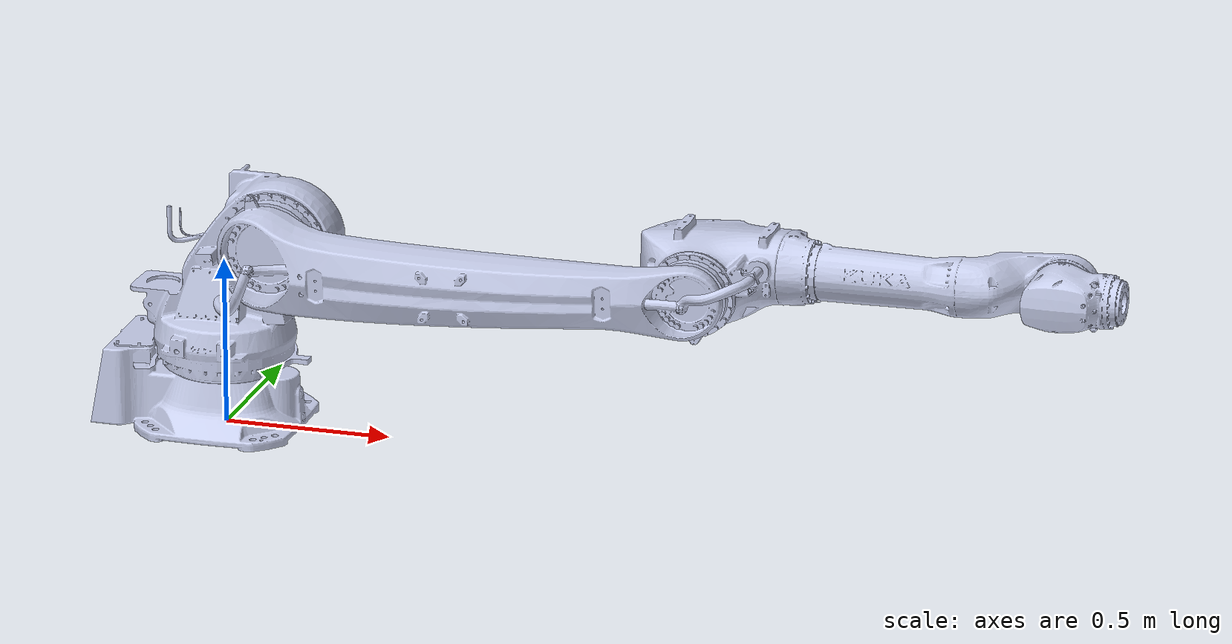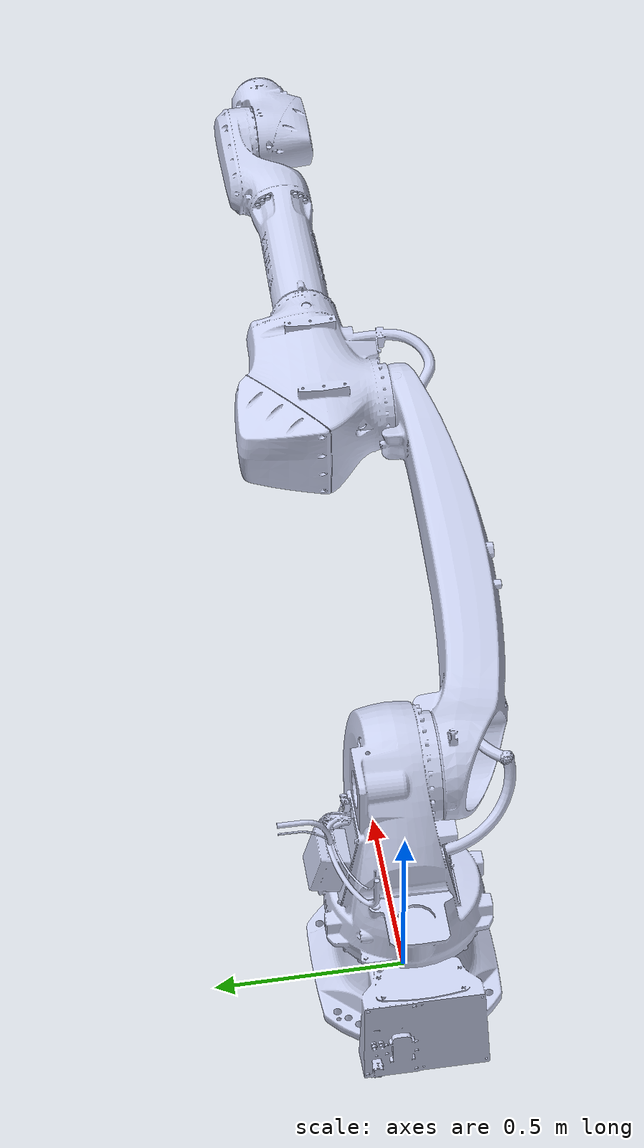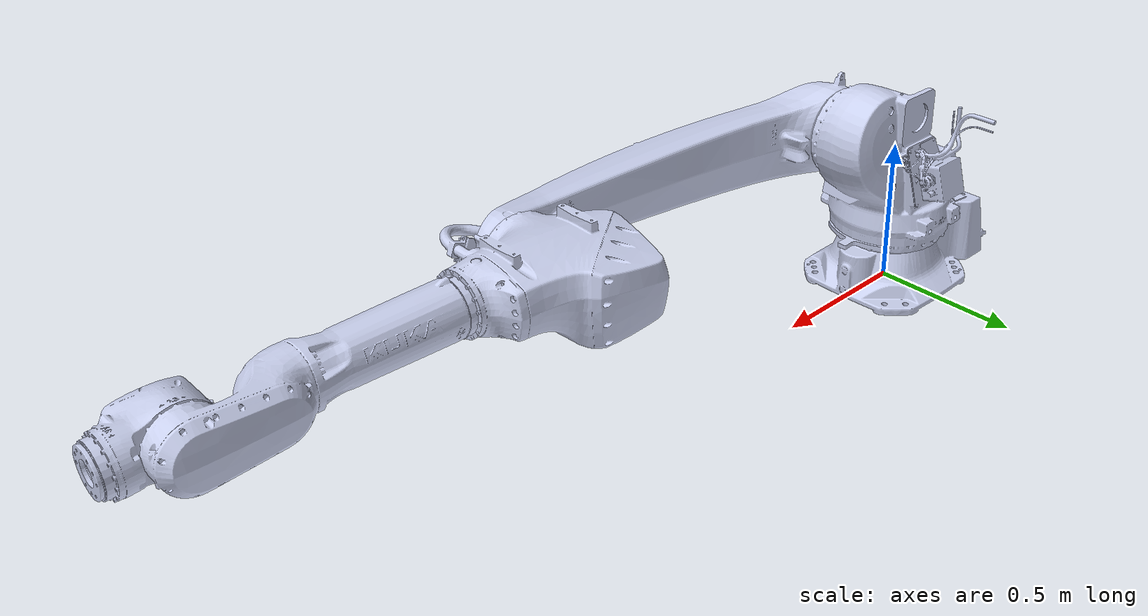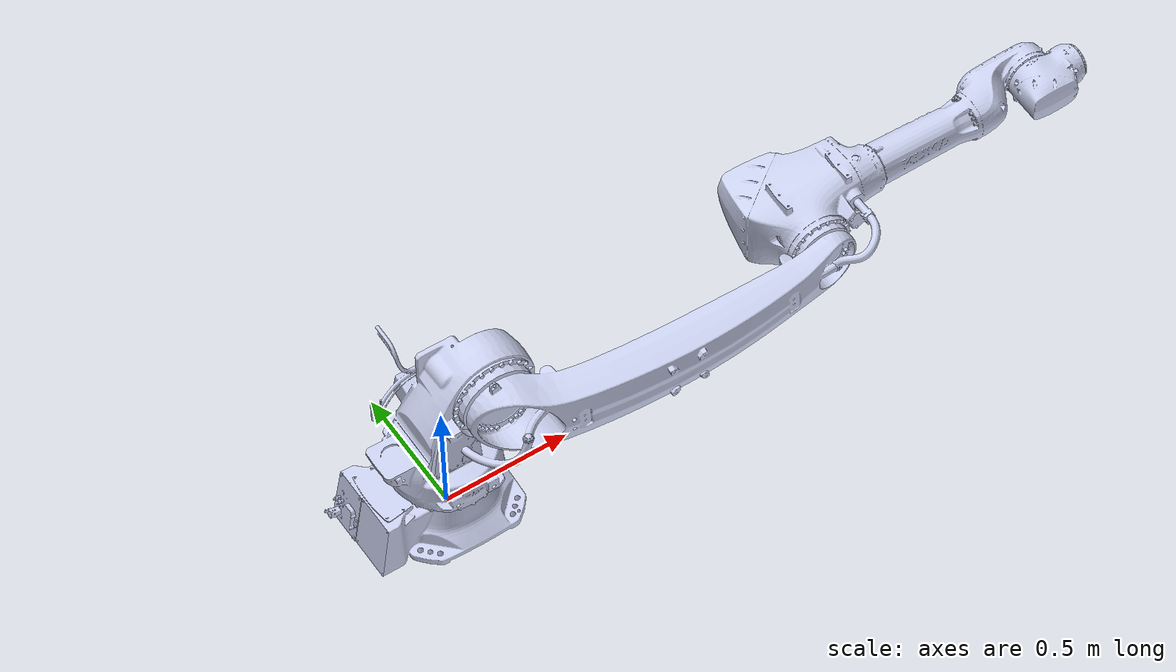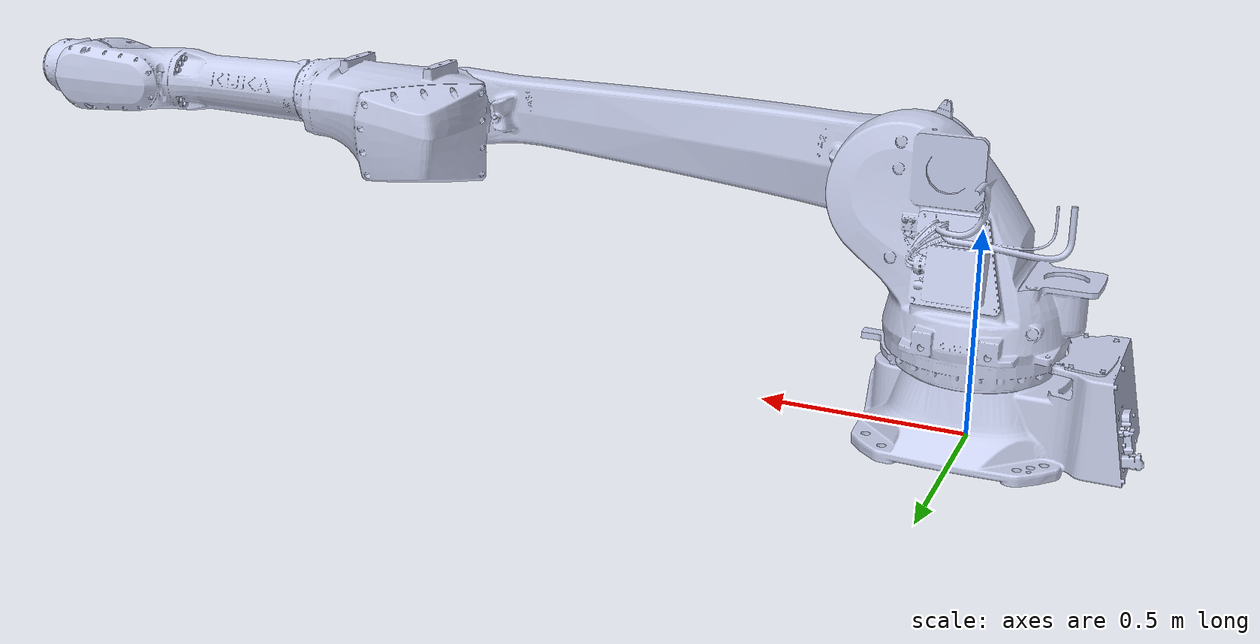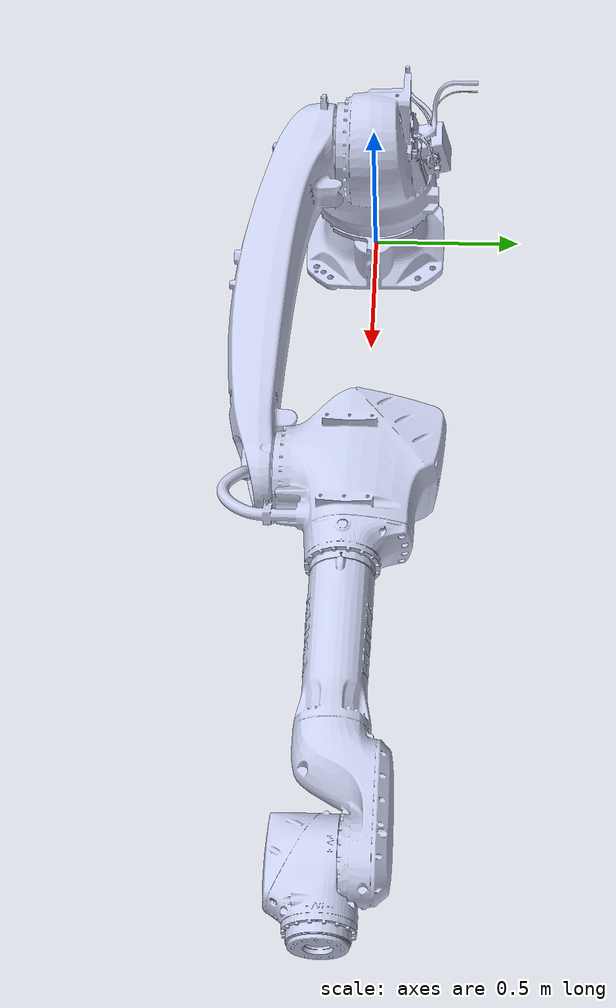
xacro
<?xml version="1.0"?>
<robot  name="kr_50_r2500" xmlns:xacro="http://www.ros.org/wiki/xacro">

  <xacro:property name="joint1_pos_upper_limit" value="2.90597" />
  <xacro:property name="joint1_pos_lower_limit" value="-2.90597" />
  <xacro:property name="joint2_pos_upper_limit" value="0.942478" />
  <xacro:property name="joint2_pos_lower_limit" value="-2.74889" />
  <xacro:property name="joint3_pos_upper_limit" value="2.67035" />
  <xacro:property name="joint3_pos_lower_limit" value="-1.88496" />
  <xacro:property name="joint4_pos_upper_limit" value="2.82743" />
  <xacro:property name="joint4_pos_lower_limit" value="-2.82743" />
  <xacro:property name="joint5_pos_upper_limit" value="1.9635" />
  <xacro:property name="joint5_pos_lower_limit" value="-1.9635" />
  <xacro:property name="joint6_pos_upper_limit" value="5.49779" />
  <xacro:property name="joint6_pos_lower_limit" value="-5.49779" />

  <xacro:property name="joint1_vel_limit" value="2.74889" />
  <xacro:property name="joint2_vel_limit" value="2.48186" />
  <xacro:property name="joint3_vel_limit" value="2.74889" />
  <xacro:property name="joint4_vel_limit" value="3.92699" />
  <xacro:property name="joint5_vel_limit" value="3.92699" />
  <xacro:property name="joint6_vel_limit" value="5.65487" />

  <!-- Effort limit = V elocity limit * 5 -->

  <xacro:property name="joint1_eff_limit" value="10000" />
  <xacro:property name="joint2_eff_limit" value="10000" />
  <xacro:property name="joint3_eff_limit" value="10000" />
  <xacro:property name="joint4_eff_limit" value="10000" />
  <xacro:property name="joint5_eff_limit" value="10000" />
  <xacro:property name="joint6_eff_limit" value="10000" />

  <link
    name="world" />
  <link
    name="base_link">
    <inertial>
      <origin
        xyz="-0.080585 0.00067592 0.086754"
        rpy="0 0 0" />
      <mass
        value="30.385" />
      <inertia
        ixx="0.38941"
        ixy="0.0047083"
        ixz="0.060696"
        iyy="0.87424"
        iyz="-0.00029206"
        izz="1.0819" />
    </inertial>
    <visual>
      <origin
        xyz="0 0 0"
        rpy="0 0 0" />
      <geometry>
        <mesh
          filename="package://kr_50_r2500_gazebo/meshes/base_link.STL" />
      </geometry>
      <material
        name="">
        <color
          rgba="0.79216 0.81961 0.93333 1" />
      </material>
    </visual>
    <collision>
      <origin
        xyz="0 0 0"
        rpy="0 0 0" />
      <geometry>
        <mesh
          filename="package://kr_50_r2500_gazebo/meshes/base_link.STL" />
      </geometry>
    </collision>
  </link>
  <joint name="world_to_base_link" type="fixed">
      <origin
        xyz="0 0 0"
        rpy="-1.57079632679 0 0" />
      <parent link="world"/>
      <child link="base_link"/>
  </joint>
  <link
    name="link1">
    <inertial>
      <origin
        xyz="0.0600446329714386 0.0116665626627102 0.247062352627269"
        rpy="0 0 0" />
      <mass
        value="56.0953515273858" />
      <inertia
        ixx="1.7123503270672"
        ixy="0.020886843872196"
        ixz="-0.525246219592262"
        iyy="2.15349859010488"
        iyz="-0.031415061955379"
        izz="1.31690706549715" />
    </inertial>
    <visual>
      <origin
        xyz="0 0 0"
        rpy="0 0 0" />
      <geometry>
        <mesh
          filename="package://kr_50_r2500_gazebo/meshes/link1.STL" />
      </geometry>
      <material
        name="">
        <color
          rgba="0.792156862745098 0.819607843137255 0.933333333333333 1" />
      </material>
    </visual>
    <collision>
      <origin
        xyz="0 0 0"
        rpy="0 0 0" />
      <geometry>
        <mesh
          filename="package://kr_50_r2500_gazebo/meshes/link1.STL" />
      </geometry>
    </collision>
  </link>
  <joint
    name="joint1"
    type="revolute">
    <origin
      xyz="0 -0.17 0"
      rpy="1.5708 0.009141 0" />
    <parent
      link="base_link" />
    <child
      link="link1" />
    <axis
      xyz="0 0 -1" />
    <limit lower="${joint1_pos_lower_limit}" upper="${joint1_pos_upper_limit}" effort="${joint1_eff_limit}" velocity="${joint1_vel_limit}"/>
  </joint>
  <link
    name="link2">
    <inertial>
      <origin
        xyz="0.0040251350126134 -0.177497207044946 0.578963319749875"
        rpy="0 0 0" />
      <mass
        value="35.5942562362571" />
      <inertia
        ixx="4.47662495992728"
        ixy="-0.00203441583192867"
        ixz="0.0769841500591921"
        iyy="4.49958249588231"
        iyz="0.214283202316168"
        izz="0.238618624180958" />
    </inertial>
    <visual>
      <origin
        xyz="0 0 0"
        rpy="0 0 0" />
      <geometry>
        <mesh
          filename="package://kr_50_r2500_gazebo/meshes/link2.STL" />
      </geometry>
      <material
        name="">
        <color
          rgba="0.792156862745098 0.819607843137255 0.933333333333333 1" />
      </material>
    </visual>
    <collision>
      <origin
        xyz="0 0 0"
        rpy="0 0 0" />
      <geometry>
        <mesh
          filename="package://kr_50_r2500_gazebo/meshes/link2.STL" />
      </geometry>
    </collision>
  </link>
  <joint
    name="joint2"
    type="revolute">
    <origin
      xyz="0.175 -0.074807 0.405"
      rpy="0 1.557055  0" />
    <parent
      link="link1" />
    <child
      link="link2" />
    <axis
      xyz="0 1 0" />
    <limit lower="${joint2_pos_lower_limit}" upper="${joint2_pos_upper_limit}" effort="${joint2_eff_limit}" velocity="${joint2_vel_limit}"/>
  </joint>
  <link
    name="link3">
    <inertial>
      <origin
        xyz="0.0305175734183824 0.097105360534718 0.0162382856824868"
        rpy="0 0 0" />
      <mass
        value="36.6784876951283" />
      <inertia
        ixx="0.563908772434098"
        ixy="0.0648382829251099"
        ixz="-0.0822356915818992"
        iyy="0.7868662787778"
        iyz="0.00379928707270628"
        izz="1.01511384262152" />
    </inertial>
    <visual>
      <origin
        xyz="0 0 0"
        rpy="0 0 0" />
      <geometry>
        <mesh
          filename="package://kr_50_r2500_gazebo/meshes/link3.STL" />
      </geometry>
      <material
        name="">
        <color
          rgba="0.792156862745098 0.819607843137255 0.933333333333333 1" />
      </material>
    </visual>
    <collision>
      <origin
        xyz="0 0 0"
        rpy="0 0 0" />
      <geometry>
        <mesh
          filename="package://kr_50_r2500_gazebo/meshes/link3.STL" />
      </geometry>
    </collision>
  </link>
  <joint
    name="joint3"
    type="revolute">
    <origin
      xyz="0 0 1.29"
      rpy="0 -1.557055 0" />
    <parent
      link="link2" />
    <child
      link="link3" />
    <axis
      xyz="0 1 0" />
    <limit lower="${joint3_pos_lower_limit}" upper="${joint3_pos_upper_limit}" effort="${joint3_eff_limit}" velocity="${joint3_vel_limit}"/>
  </joint>
  <link
    name="link4">
    <inertial>
      <origin
        xyz="0.400085577392824 0.0280533450779974 -6.01461215805621E-05"
        rpy="0 0 0" />
      <mass
        value="15.1542881051753" />
      <inertia
        ixx="0.0701060691297577"
        ixy="-0.0990093812478981"
        ixz="0.00018489912158269"
        iyy="0.729933929975417"
        iyz="-2.55452640777306E-05"
        izz="0.748398699396793" />
    </inertial>
    <visual>
      <origin
        xyz="0 0 0"
        rpy="0 0 0" />
      <geometry>
        <mesh
          filename="package://kr_50_r2500_gazebo/meshes/link4.STL" />
      </geometry>
      <material
        name="">
        <color
          rgba="0.792156862745098 0.819607843137255 0.933333333333333 1" />
      </material>
    </visual>
    <collision>
      <origin
        xyz="0 0 0"
        rpy="0 0 0" />
      <geometry>
        <mesh
          filename="package://kr_50_r2500_gazebo/meshes/link4.STL" />
      </geometry>
    </collision>
  </link>
  <joint
    name="joint4"
    type="revolute">
    <origin
      xyz="0.32687 0.074807 0.05"
      rpy="0 0 0" />
    <parent
      link="link3" />
    <child
      link="link4" />
    <axis
      xyz="1 0 0" />
    <limit lower="${joint4_pos_lower_limit}" upper="${joint4_pos_upper_limit}" effort="${joint4_eff_limit}" velocity="${joint4_vel_limit}"/>
  </joint>
  <link
    name="link5">
    <inertial>
      <origin
        xyz="0.0348166227286741 -0.0333672873060013 -7.86869120463773E-05"
        rpy="0 0 0" />
      <mass
        value="5.17490767884354" />
      <inertia
        ixx="0.0198943557123769"
        ixy="-0.00379528838423929"
        ixz="-3.17734786601442E-05"
        iyy="0.0325404927644558"
        iyz="2.0392665049925E-05"
        izz="0.0334468145607699" />
    </inertial>
    <visual>
      <origin
        xyz="0 0 0"
        rpy="0 0 0" />
      <geometry>
        <mesh
          filename="package://kr_50_r2500_gazebo/meshes/link5.STL" />
      </geometry>
      <material
        name="">
        <color
          rgba="0.792156862745098 0.819607843137255 0.933333333333333 1" />
      </material>
    </visual>
    <collision>
      <origin
        xyz="0 0 0"
        rpy="0 0 0" />
      <geometry>
        <mesh
          filename="package://kr_50_r2500_gazebo/meshes/link5.STL" />
      </geometry>
    </collision>
  </link>
  <joint
    name="joint5"
    type="revolute">
    <origin
      xyz="0.708131634616243 0 0"
      rpy="0 -0.0 0" />
    <parent
      link="link4" />
    <child
      link="link5" />
    <axis
      xyz="0 1 0" />
    <limit lower="${joint5_pos_lower_limit}" upper="${joint5_pos_upper_limit}" effort="${joint5_eff_limit}" velocity="${joint5_vel_limit}"/>
  </joint>
  <link
    name="link6">
    <inertial>
      <origin
        xyz="0.0697663509698883 -2.97159715269453E-06 -4.15148219581329E-05"
        rpy="0 0 0" />
      <mass
        value="0.362972835401582" />
      <inertia
        ixx="0.000809216081686161"
        ixy="9.97029573660496E-10"
        ixz="2.41841688721677E-07"
        iyy="0.000440777200154296"
        iyz="1.15745872636665E-07"
        izz="0.000441694717362902" />
    </inertial>
    <visual>
      <origin
        xyz="0 0 0"
        rpy="0 0 0" />
      <geometry>
        <mesh
          filename="package://kr_50_r2500_gazebo/meshes/link6.STL" />
      </geometry>
      <material
        name="">
        <color
          rgba="0.792156862745098 0.819607843137255 0.933333333333333 1" />
      </material>
    </visual>
    <collision>
      <origin
        xyz="0 0 0"
        rpy="0 0 0" />
      <geometry>
        <mesh
          filename="package://kr_50_r2500_gazebo/meshes/link6.STL" />
      </geometry>
    </collision>
  </link>
  <joint
    name="joint6"
    type="revolute">
    <origin
      xyz="0.0966663727881543 0 0"
      rpy="0 0 0" />
    <parent
      link="link5" />
    <child
      link="link6" />
    <axis
      xyz="1 0 0" />
    <limit lower="${joint6_pos_lower_limit}" upper="${joint6_pos_upper_limit}" effort="${joint6_eff_limit}" velocity="${joint6_vel_limit}"/>
  </joint>

  <transmission name="tran1">
    <type>transmission_interface/SimpleTransmission</type>
    <joint name="joint1">
      <hardwareInterface>hardware_interface/EffortJointInterface</hardwareInterface>
    </joint>
    <actuator name="motor1">
      <hardwareInterface>hardware_interface/EffortJointInterface</hardwareInterface>
      <mechanicalReduction>1</mechanicalReduction>
    </actuator>
  </transmission>

  <transmission name="tran2">
    <type>transmission_interface/SimpleTransmission</type>
    <joint name="joint2">
      <hardwareInterface>hardware_interface/EffortJointInterface</hardwareInterface>
    </joint>
    <actuator name="motor2">
      <hardwareInterface>hardware_interface/EffortJointInterface</hardwareInterface>
      <mechanicalReduction>1</mechanicalReduction>
    </actuator>
  </transmission>

  <transmission name="tran3">
    <type>transmission_interface/SimpleTransmission</type>
    <joint name="joint3">
      <hardwareInterface>hardware_interface/EffortJointInterface</hardwareInterface>
    </joint>
    <actuator name="motor3">
      <hardwareInterface>hardware_interface/EffortJointInterface</hardwareInterface>
      <mechanicalReduction>1</mechanicalReduction>
    </actuator>
  </transmission>

  <transmission name="tran4">
    <type>transmission_interface/SimpleTransmission</type>
    <joint name="joint4">
      <hardwareInterface>hardware_interface/EffortJointInterface</hardwareInterface>
    </joint>
    <actuator name="motor4">
      <hardwareInterface>hardware_interface/EffortJointInterface</hardwareInterface>
      <mechanicalReduction>1</mechanicalReduction>
    </actuator>
  </transmission>

  <transmission name="tran5">
    <type>transmission_interface/SimpleTransmission</type>
    <joint name="joint5">
      <hardwareInterface>hardware_interface/EffortJointInterface</hardwareInterface>
    </joint>
    <actuator name="motor5">
      <hardwareInterface>hardware_interface/EffortJointInterface</hardwareInterface>
      <mechanicalReduction>1</mechanicalReduction>
    </actuator>
  </transmission>

  <transmission name="tran6">
    <type>transmission_interface/SimpleTransmission</type>
    <joint name="joint6">
      <hardwareInterface>hardware_interface/EffortJointInterface</hardwareInterface>
    </joint>
    <actuator name="motor6">
      <hardwareInterface>hardware_interface/EffortJointInterface</hardwareInterface>
      <mechanicalReduction>1</mechanicalReduction>
    </actuator>
  </transmission>

</robot>
